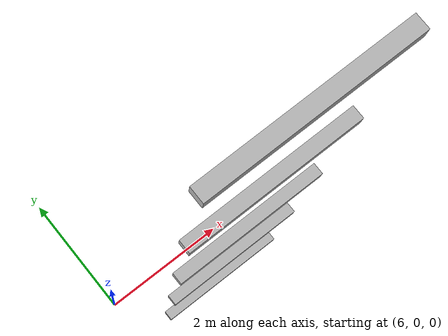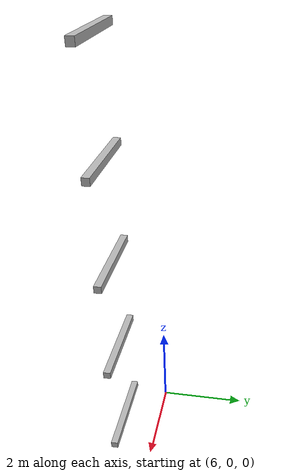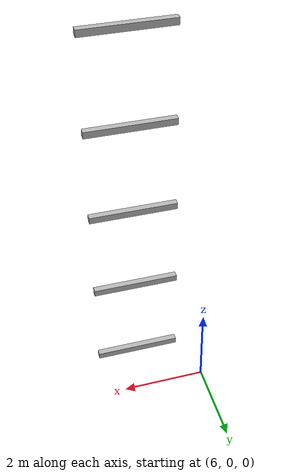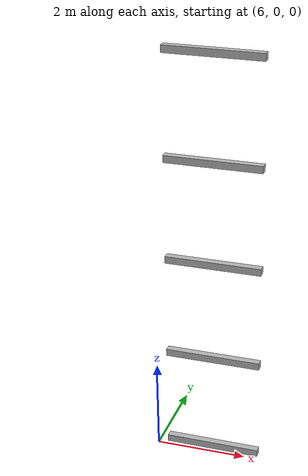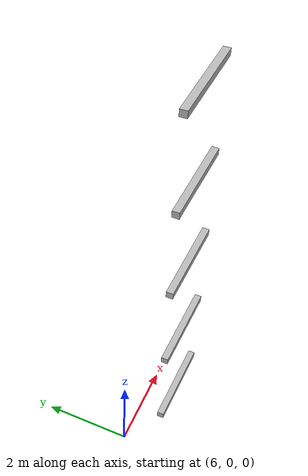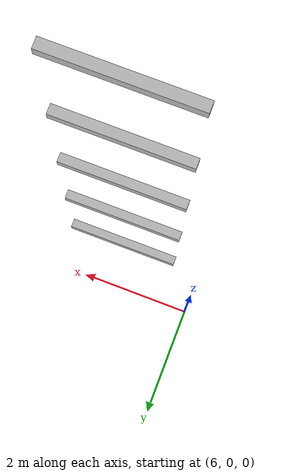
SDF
<sdf version="1.7">
 <world name="default">
  <model name="orthogonal_747_2.000.15_TS">
   <static>1</static>
   <link name="x_link_1_2_6">
    <inertial>
     <mass>1</mass>
     <inertia>
      <ixx>0.166667</ixx>
      <ixy>0</ixy>
      <ixz>0</ixz>
      <iyy>0.166667</iyy>
      <iyz>0</iyz>
      <izz>0.166667</izz>
     </inertia>
    </inertial>
    <pose>13.975 4.3 3.225 0 -0 0</pose>
    <visual name="visual_0">
     <laser_retro>1275</laser_retro>
     <geometry><box><size>2 1e-06 0.15</size></box></geometry>
     <material>
      <script><name>Gazebo/Grey</name><uri>file://media/materials/scripts/gazebo.material</uri></script>
      <shader type="pixel"><normal_map>__default__</normal_map></shader>
      <ambient>0.678 0.498 0.659 1</ambient>
      <diffuse>0.7 0.7 0.7 1</diffuse>
      <specular>0.01 0.01 0.01 1</specular>
      <emissive>0 0 0 1</emissive>
     </material>
     <pose>0 -0.075 0 0 -0 0</pose>
     <transparency>1</transparency>
    </visual>
    <visual name="visual_1">
     <laser_retro>1276</laser_retro>
     <geometry><box><size>2 1e-06 0.15</size></box></geometry>
     <material>
      <script><name>Gazebo/Grey</name><uri>file://media/materials/scripts/gazebo.material</uri></script>
      <shader type="pixel"><normal_map>__default__</normal_map></shader>
      <ambient>0.447 0.624 0.812 1</ambient>
      <diffuse>0.7 0.7 0.7 1</diffuse>
      <specular>0.01 0.01 0.01 1</specular>
      <emissive>0 0 0 1</emissive>
     </material>
     <pose>0 0.075 0 0 -0 0</pose>
     <transparency>1</transparency>
    </visual>
    <visual name="visual_2">
     <laser_retro>1277</laser_retro>
     <geometry><box><size>2 0.15 1e-06</size></box></geometry>
     <material>
      <script><name>Gazebo/Grey</name><uri>file://media/materials/scripts/gazebo.material</uri></script>
      <shader type="pixel"><normal_map>__default__</normal_map></shader>
      <ambient>0.988 0.686 0.243 1</ambient>
      <diffuse>0.7 0.7 0.7 1</diffuse>
      <specular>0.01 0.01 0.01 1</specular>
      <emissive>0 0 0 1</emissive>
     </material>
     <pose>0 0 -0.075 0 -0 0</pose>
     <transparency>1</transparency>
    </visual>
    <visual name="visual_3">
     <laser_retro>1278</laser_retro>
     <geometry><box><size>1e-06 0.15 0.15</size></box></geometry>
     <material>
      <script><name>Gazebo/Grey</name><uri>file://media/materials/scripts/gazebo.material</uri></script>
      <shader type="pixel"><normal_map>__default__</normal_map></shader>
      <ambient>0.988 0.914 0.31 1</ambient>
      <diffuse>0.7 0.7 0.7 1</diffuse>
      <specular>0.01 0.01 0.01 1</specular>
      <emissive>0 0 0 1</emissive>
     </material>
     <pose>1 0 0 0 -0 0</pose>
     <transparency>1</transparency>
    </visual>
    <visual name="visual_4">
     <laser_retro>1279</laser_retro>
     <geometry><box><size>2 0.15 1e-06</size></box></geometry>
     <material>
      <script><name>Gazebo/Grey</name><uri>file://media/materials/scripts/gazebo.material</uri></script>
      <shader type="pixel"><normal_map>__default__</normal_map></shader>
      <ambient>0.937 0.161 0.161 1</ambient>
      <diffuse>0.7 0.7 0.7 1</diffuse>
      <specular>0.01 0.01 0.01 1</specular>
      <emissive>0 0 0 1</emissive>
     </material>
     <pose>0 0 0.075 0 -0 0</pose>
     <transparency>1</transparency>
    </visual>
    <visual name="visual_5">
     <laser_retro>1280</laser_retro>
     <geometry><box><size>1e-06 0.15 0.15</size></box></geometry>
     <material>
      <script><name>Gazebo/Grey</name><uri>file://media/materials/scripts/gazebo.material</uri></script>
      <shader type="pixel"><normal_map>__default__</normal_map></shader>
      <ambient>0.541 0.886 0.204 1</ambient>
      <diffuse>0.7 0.7 0.7 1</diffuse>
      <specular>0.01 0.01 0.01 1</specular>
      <emissive>0 0 0 1</emissive>
     </material>
     <pose>-1 0 0 0 -0 0</pose>
     <transparency>1</transparency>
    </visual>
    <visual name="visual_texture">
     <geometry><box><size>1.9998 0.149985 0.149985</size></box></geometry>
     <material>
      <script>
       <uri>model://BASE_MODELS/simple_block_v2_textured/materials/scripts</uri>
       <uri>model://BASE_MODELS/simple_block_v2_textured/materials/textures</uri>
       <name>metal</name>
      </script>
     </material>
     <laser_retro>1281</laser_retro>
    </visual>
    <collision name="collision">
     <geometry><box><size>2 0.15 0.15</size></box></geometry>
     <surface>
      <friction>
       <ode><mu>1</mu><mu2>1</mu2><fdir1>0 0 0</fdir1><slip1>0</slip1><slip2>0</slip2></ode>
       <torsional>
        <coefficient>1</coefficient>
        <patch_radius>0</patch_radius>
        <surface_radius>0</surface_radius>
        <use_patch_radius>1</use_patch_radius>
        <ode><slip>0</slip></ode>
       </torsional>
      </friction>
      <bounce><restitution_coefficient>0</restitution_coefficient><threshold>1e+06</threshold></bounce>
      <contact>
       <collide_without_contact>0</collide_without_contact>
       <collide_without_contact_bitmask>1</collide_without_contact_bitmask>
       <collide_bitmask>1</collide_bitmask>
       <ode>
        <soft_cfm>0</soft_cfm>
        <soft_erp>0.2</soft_erp>
        <kp>1e+13</kp>
        <kd>1</kd>
        <max_vel>0.01</max_vel>
        <min_depth>0</min_depth>
       </ode>
       <bullet>
        <split_impulse>1</split_impulse>
        <split_impulse_penetration_threshold>-0.01</split_impulse_penetration_threshold>
        <soft_cfm>0</soft_cfm>
        <soft_erp>0.2</soft_erp>
        <kp>1e+13</kp>
        <kd>1</kd>
       </bullet>
      </contact>
     </surface>
    </collision>
   </link>
   <link name="x_link_2_2_6">
    <inertial>
     <mass>1</mass>
     <inertia>
      <ixx>0.166667</ixx>
      <ixy>0</ixy>
      <ixz>0</ixz>
      <iyy>0.166667</iyy>
      <iyz>0</iyz>
      <izz>0.166667</izz>
     </inertia>
    </inertial>
    <pose>13.975 4.3 5.375 0 -0 0</pose>
    <visual name="visual_0">
     <laser_retro>2178</laser_retro>
     <geometry><box><size>2 1e-06 0.15</size></box></geometry>
     <material>
      <script><name>Gazebo/Grey</name><uri>file://media/materials/scripts/gazebo.material</uri></script>
      <shader type="pixel"><normal_map>__default__</normal_map></shader>
      <ambient>0.678 0.498 0.659 1</ambient>
      <diffuse>0.7 0.7 0.7 1</diffuse>
      <specular>0.01 0.01 0.01 1</specular>
      <emissive>0 0 0 1</emissive>
     </material>
     <pose>0 -0.075 0 0 -0 0</pose>
     <transparency>1</transparency>
    </visual>
    <visual name="visual_1">
     <laser_retro>2179</laser_retro>
     <geometry><box><size>2 1e-06 0.15</size></box></geometry>
     <material>
      <script><name>Gazebo/Grey</name><uri>file://media/materials/scripts/gazebo.material</uri></script>
      <shader type="pixel"><normal_map>__default__</normal_map></shader>
      <ambient>0.447 0.624 0.812 1</ambient>
      <diffuse>0.7 0.7 0.7 1</diffuse>
      <specular>0.01 0.01 0.01 1</specular>
      <emissive>0 0 0 1</emissive>
     </material>
     <pose>0 0.075 0 0 -0 0</pose>
     <transparency>1</transparency>
    </visual>
    <visual name="visual_2">
     <laser_retro>2180</laser_retro>
     <geometry><box><size>2 0.15 1e-06</size></box></geometry>
     <material>
      <script><name>Gazebo/Grey</name><uri>file://media/materials/scripts/gazebo.material</uri></script>
      <shader type="pixel"><normal_map>__default__</normal_map></shader>
      <ambient>0.988 0.686 0.243 1</ambient>
      <diffuse>0.7 0.7 0.7 1</diffuse>
      <specular>0.01 0.01 0.01 1</specular>
      <emissive>0 0 0 1</emissive>
     </material>
     <pose>0 0 -0.075 0 -0 0</pose>
     <transparency>1</transparency>
    </visual>
    <visual name="visual_3">
     <laser_retro>2181</laser_retro>
     <geometry><box><size>1e-06 0.15 0.15</size></box></geometry>
     <material>
      <script><name>Gazebo/Grey</name><uri>file://media/materials/scripts/gazebo.material</uri></script>
      <shader type="pixel"><normal_map>__default__</normal_map></shader>
      <ambient>0.988 0.914 0.31 1</ambient>
      <diffuse>0.7 0.7 0.7 1</diffuse>
      <specular>0.01 0.01 0.01 1</specular>
      <emissive>0 0 0 1</emissive>
     </material>
     <pose>1 0 0 0 -0 0</pose>
     <transparency>1</transparency>
    </visual>
    <visual name="visual_4">
     <laser_retro>2182</laser_retro>
     <geometry><box><size>2 0.15 1e-06</size></box></geometry>
     <material>
      <script><name>Gazebo/Grey</name><uri>file://media/materials/scripts/gazebo.material</uri></script>
      <shader type="pixel"><normal_map>__default__</normal_map></shader>
      <ambient>0.937 0.161 0.161 1</ambient>
      <diffuse>0.7 0.7 0.7 1</diffuse>
      <specular>0.01 0.01 0.01 1</specular>
      <emissive>0 0 0 1</emissive>
     </material>
     <pose>0 0 0.075 0 -0 0</pose>
     <transparency>1</transparency>
    </visual>
    <visual name="visual_5">
     <laser_retro>2183</laser_retro>
     <geometry><box><size>1e-06 0.15 0.15</size></box></geometry>
     <material>
      <script><name>Gazebo/Grey</name><uri>file://media/materials/scripts/gazebo.material</uri></script>
      <shader type="pixel"><normal_map>__default__</normal_map></shader>
      <ambient>0.541 0.886 0.204 1</ambient>
      <diffuse>0.7 0.7 0.7 1</diffuse>
      <specular>0.01 0.01 0.01 1</specular>
      <emissive>0 0 0 1</emissive>
     </material>
     <pose>-1 0 0 0 -0 0</pose>
     <transparency>1</transparency>
    </visual>
    <visual name="visual_texture">
     <geometry><box><size>1.9998 0.149985 0.149985</size></box></geometry>
     <material>
      <script>
       <uri>model://BASE_MODELS/simple_block_v2_textured/materials/scripts</uri>
       <uri>model://BASE_MODELS/simple_block_v2_textured/materials/textures</uri>
       <name>metal</name>
      </script>
     </material>
     <laser_retro>2184</laser_retro>
    </visual>
    <collision name="collision">
     <geometry><box><size>2 0.15 0.15</size></box></geometry>
     <surface>
      <friction>
       <ode><mu>1</mu><mu2>1</mu2><fdir1>0 0 0</fdir1><slip1>0</slip1><slip2>0</slip2></ode>
       <torsional>
        <coefficient>1</coefficient>
        <patch_radius>0</patch_radius>
        <surface_radius>0</surface_radius>
        <use_patch_radius>1</use_patch_radius>
        <ode><slip>0</slip></ode>
       </torsional>
      </friction>
      <bounce><restitution_coefficient>0</restitution_coefficient><threshold>1e+06</threshold></bounce>
      <contact>
       <collide_without_contact>0</collide_without_contact>
       <collide_without_contact_bitmask>1</collide_without_contact_bitmask>
       <collide_bitmask>1</collide_bitmask>
       <ode>
        <soft_cfm>0</soft_cfm>
        <soft_erp>0.2</soft_erp>
        <kp>1e+13</kp>
        <kd>1</kd>
        <max_vel>0.01</max_vel>
        <min_depth>0</min_depth>
       </ode>
       <bullet>
        <split_impulse>1</split_impulse>
        <split_impulse_penetration_threshold>-0.01</split_impulse_penetration_threshold>
        <soft_cfm>0</soft_cfm>
        <soft_erp>0.2</soft_erp>
        <kp>1e+13</kp>
        <kd>1</kd>
       </bullet>
      </contact>
     </surface>
    </collision>
   </link>
   <link name="x_link_3_2_6">
    <inertial>
     <mass>1</mass>
     <inertia>
      <ixx>0.166667</ixx>
      <ixy>0</ixy>
      <ixz>0</ixz>
      <iyy>0.166667</iyy>
      <iyz>0</iyz>
      <izz>0.166667</izz>
     </inertia>
    </inertial>
    <pose>13.975 4.3 7.525 0 -0 0</pose>
    <visual name="visual_0">
     <laser_retro>3081</laser_retro>
     <geometry><box><size>2 1e-06 0.15</size></box></geometry>
     <material>
      <script><name>Gazebo/Grey</name><uri>file://media/materials/scripts/gazebo.material</uri></script>
      <shader type="pixel"><normal_map>__default__</normal_map></shader>
      <ambient>0.678 0.498 0.659 1</ambient>
      <diffuse>0.7 0.7 0.7 1</diffuse>
      <specular>0.01 0.01 0.01 1</specular>
      <emissive>0 0 0 1</emissive>
     </material>
     <pose>0 -0.075 0 0 -0 0</pose>
     <transparency>1</transparency>
    </visual>
    <visual name="visual_1">
     <laser_retro>3082</laser_retro>
     <geometry><box><size>2 1e-06 0.15</size></box></geometry>
     <material>
      <script><name>Gazebo/Grey</name><uri>file://media/materials/scripts/gazebo.material</uri></script>
      <shader type="pixel"><normal_map>__default__</normal_map></shader>
      <ambient>0.447 0.624 0.812 1</ambient>
      <diffuse>0.7 0.7 0.7 1</diffuse>
      <specular>0.01 0.01 0.01 1</specular>
      <emissive>0 0 0 1</emissive>
     </material>
     <pose>0 0.075 0 0 -0 0</pose>
     <transparency>1</transparency>
    </visual>
    <visual name="visual_2">
     <laser_retro>3083</laser_retro>
     <geometry><box><size>2 0.15 1e-06</size></box></geometry>
     <material>
      <script><name>Gazebo/Grey</name><uri>file://media/materials/scripts/gazebo.material</uri></script>
      <shader type="pixel"><normal_map>__default__</normal_map></shader>
      <ambient>0.988 0.686 0.243 1</ambient>
      <diffuse>0.7 0.7 0.7 1</diffuse>
      <specular>0.01 0.01 0.01 1</specular>
      <emissive>0 0 0 1</emissive>
     </material>
     <pose>0 0 -0.075 0 -0 0</pose>
     <transparency>1</transparency>
    </visual>
    <visual name="visual_3">
     <laser_retro>3084</laser_retro>
     <geometry><box><size>1e-06 0.15 0.15</size></box></geometry>
     <material>
      <script><name>Gazebo/Grey</name><uri>file://media/materials/scripts/gazebo.material</uri></script>
      <shader type="pixel"><normal_map>__default__</normal_map></shader>
      <ambient>0.988 0.914 0.31 1</ambient>
      <diffuse>0.7 0.7 0.7 1</diffuse>
      <specular>0.01 0.01 0.01 1</specular>
      <emissive>0 0 0 1</emissive>
     </material>
     <pose>1 0 0 0 -0 0</pose>
     <transparency>1</transparency>
    </visual>
    <visual name="visual_4">
     <laser_retro>3085</laser_retro>
     <geometry><box><size>2 0.15 1e-06</size></box></geometry>
     <material>
      <script><name>Gazebo/Grey</name><uri>file://media/materials/scripts/gazebo.material</uri></script>
      <shader type="pixel"><normal_map>__default__</normal_map></shader>
      <ambient>0.937 0.161 0.161 1</ambient>
      <diffuse>0.7 0.7 0.7 1</diffuse>
      <specular>0.01 0.01 0.01 1</specular>
      <emissive>0 0 0 1</emissive>
     </material>
     <pose>0 0 0.075 0 -0 0</pose>
     <transparency>1</transparency>
    </visual>
    <visual name="visual_5">
     <laser_retro>3086</laser_retro>
     <geometry><box><size>1e-06 0.15 0.15</size></box></geometry>
     <material>
      <script><name>Gazebo/Grey</name><uri>file://media/materials/scripts/gazebo.material</uri></script>
      <shader type="pixel"><normal_map>__default__</normal_map></shader>
      <ambient>0.541 0.886 0.204 1</ambient>
      <diffuse>0.7 0.7 0.7 1</diffuse>
      <specular>0.01 0.01 0.01 1</specular>
      <emissive>0 0 0 1</emissive>
     </material>
     <pose>-1 0 0 0 -0 0</pose>
     <transparency>1</transparency>
    </visual>
    <visual name="visual_texture">
     <geometry><box><size>1.9998 0.149985 0.149985</size></box></geometry>
     <material>
      <script>
       <uri>model://BASE_MODELS/simple_block_v2_textured/materials/scripts</uri>
       <uri>model://BASE_MODELS/simple_block_v2_textured/materials/textures</uri>
       <name>metal</name>
      </script>
     </material>
     <laser_retro>3087</laser_retro>
    </visual>
    <collision name="collision">
     <geometry><box><size>2 0.15 0.15</size></box></geometry>
     <surface>
      <friction>
       <ode><mu>1</mu><mu2>1</mu2><fdir1>0 0 0</fdir1><slip1>0</slip1><slip2>0</slip2></ode>
       <torsional>
        <coefficient>1</coefficient>
        <patch_radius>0</patch_radius>
        <surface_radius>0</surface_radius>
        <use_patch_radius>1</use_patch_radius>
        <ode><slip>0</slip></ode>
       </torsional>
      </friction>
      <bounce><restitution_coefficient>0</restitution_coefficient><threshold>1e+06</threshold></bounce>
      <contact>
       <collide_without_contact>0</collide_without_contact>
       <collide_without_contact_bitmask>1</collide_without_contact_bitmask>
       <collide_bitmask>1</collide_bitmask>
       <ode>
        <soft_cfm>0</soft_cfm>
        <soft_erp>0.2</soft_erp>
        <kp>1e+13</kp>
        <kd>1</kd>
        <max_vel>0.01</max_vel>
        <min_depth>0</min_depth>
       </ode>
       <bullet>
        <split_impulse>1</split_impulse>
        <split_impulse_penetration_threshold>-0.01</split_impulse_penetration_threshold>
        <soft_cfm>0</soft_cfm>
        <soft_erp>0.2</soft_erp>
        <kp>1e+13</kp>
        <kd>1</kd>
       </bullet>
      </contact>
     </surface>
    </collision>
   </link>
   <link name="x_link_4_2_6">
    <inertial>
     <mass>1</mass>
     <inertia>
      <ixx>0.166667</ixx>
      <ixy>0</ixy>
      <ixz>0</ixz>
      <iyy>0.166667</iyy>
      <iyz>0</iyz>
      <izz>0.166667</izz>
     </inertia>
    </inertial>
    <pose>13.975 4.3 9.675 0 -0 0</pose>
    <visual name="visual_0">
     <laser_retro>3984</laser_retro>
     <geometry><box><size>2 1e-06 0.15</size></box></geometry>
     <material>
      <script><name>Gazebo/Grey</name><uri>file://media/materials/scripts/gazebo.material</uri></script>
      <shader type="pixel"><normal_map>__default__</normal_map></shader>
      <ambient>0.678 0.498 0.659 1</ambient>
      <diffuse>0.7 0.7 0.7 1</diffuse>
      <specular>0.01 0.01 0.01 1</specular>
      <emissive>0 0 0 1</emissive>
     </material>
     <pose>0 -0.075 0 0 -0 0</pose>
     <transparency>1</transparency>
    </visual>
    <visual name="visual_1">
     <laser_retro>3985</laser_retro>
     <geometry><box><size>2 1e-06 0.15</size></box></geometry>
     <material>
      <script><name>Gazebo/Grey</name><uri>file://media/materials/scripts/gazebo.material</uri></script>
      <shader type="pixel"><normal_map>__default__</normal_map></shader>
      <ambient>0.447 0.624 0.812 1</ambient>
      <diffuse>0.7 0.7 0.7 1</diffuse>
      <specular>0.01 0.01 0.01 1</specular>
      <emissive>0 0 0 1</emissive>
     </material>
     <pose>0 0.075 0 0 -0 0</pose>
     <transparency>1</transparency>
    </visual>
    <visual name="visual_2">
     <laser_retro>3986</laser_retro>
     <geometry><box><size>2 0.15 1e-06</size></box></geometry>
     <material>
      <script><name>Gazebo/Grey</name><uri>file://media/materials/scripts/gazebo.material</uri></script>
      <shader type="pixel"><normal_map>__default__</normal_map></shader>
      <ambient>0.988 0.686 0.243 1</ambient>
      <diffuse>0.7 0.7 0.7 1</diffuse>
      <specular>0.01 0.01 0.01 1</specular>
      <emissive>0 0 0 1</emissive>
     </material>
     <pose>0 0 -0.075 0 -0 0</pose>
     <transparency>1</transparency>
    </visual>
    <visual name="visual_3">
     <laser_retro>3987</laser_retro>
     <geometry><box><size>1e-06 0.15 0.15</size></box></geometry>
     <material>
      <script><name>Gazebo/Grey</name><uri>file://media/materials/scripts/gazebo.material</uri></script>
      <shader type="pixel"><normal_map>__default__</normal_map></shader>
      <ambient>0.988 0.914 0.31 1</ambient>
      <diffuse>0.7 0.7 0.7 1</diffuse>
      <specular>0.01 0.01 0.01 1</specular>
      <emissive>0 0 0 1</emissive>
     </material>
     <pose>1 0 0 0 -0 0</pose>
     <transparency>1</transparency>
    </visual>
    <visual name="visual_4">
     <laser_retro>3988</laser_retro>
     <geometry><box><size>2 0.15 1e-06</size></box></geometry>
     <material>
      <script><name>Gazebo/Grey</name><uri>file://media/materials/scripts/gazebo.material</uri></script>
      <shader type="pixel"><normal_map>__default__</normal_map></shader>
      <ambient>0.937 0.161 0.161 1</ambient>
      <diffuse>0.7 0.7 0.7 1</diffuse>
      <specular>0.01 0.01 0.01 1</specular>
      <emissive>0 0 0 1</emissive>
     </material>
     <pose>0 0 0.075 0 -0 0</pose>
     <transparency>1</transparency>
    </visual>
    <visual name="visual_5">
     <laser_retro>3989</laser_retro>
     <geometry><box><size>1e-06 0.15 0.15</size></box></geometry>
     <material>
      <script><name>Gazebo/Grey</name><uri>file://media/materials/scripts/gazebo.material</uri></script>
      <shader type="pixel"><normal_map>__default__</normal_map></shader>
      <ambient>0.541 0.886 0.204 1</ambient>
      <diffuse>0.7 0.7 0.7 1</diffuse>
      <specular>0.01 0.01 0.01 1</specular>
      <emissive>0 0 0 1</emissive>
     </material>
     <pose>-1 0 0 0 -0 0</pose>
     <transparency>1</transparency>
    </visual>
    <visual name="visual_texture">
     <geometry><box><size>1.9998 0.149985 0.149985</size></box></geometry>
     <material>
      <script>
       <uri>model://BASE_MODELS/simple_block_v2_textured/materials/scripts</uri>
       <uri>model://BASE_MODELS/simple_block_v2_textured/materials/textures</uri>
       <name>metal</name>
      </script>
     </material>
     <laser_retro>3990</laser_retro>
    </visual>
    <collision name="collision">
     <geometry><box><size>2 0.15 0.15</size></box></geometry>
     <surface>
      <friction>
       <ode><mu>1</mu><mu2>1</mu2><fdir1>0 0 0</fdir1><slip1>0</slip1><slip2>0</slip2></ode>
       <torsional>
        <coefficient>1</coefficient>
        <patch_radius>0</patch_radius>
        <surface_radius>0</surface_radius>
        <use_patch_radius>1</use_patch_radius>
        <ode><slip>0</slip></ode>
       </torsional>
      </friction>
      <bounce><restitution_coefficient>0</restitution_coefficient><threshold>1e+06</threshold></bounce>
      <contact>
       <collide_without_contact>0</collide_without_contact>
       <collide_without_contact_bitmask>1</collide_without_contact_bitmask>
       <collide_bitmask>1</collide_bitmask>
       <ode>
        <soft_cfm>0</soft_cfm>
        <soft_erp>0.2</soft_erp>
        <kp>1e+13</kp>
        <kd>1</kd>
        <max_vel>0.01</max_vel>
        <min_depth>0</min_depth>
       </ode>
       <bullet>
        <split_impulse>1</split_impulse>
        <split_impulse_penetration_threshold>-0.01</split_impulse_penetration_threshold>
        <soft_cfm>0</soft_cfm>
        <soft_erp>0.2</soft_erp>
        <kp>1e+13</kp>
        <kd>1</kd>
       </bullet>
      </contact>
     </surface>
    </collision>
   </link>
   <link name="x_link_5_2_6">
    <inertial>
     <mass>1</mass>
     <inertia>
      <ixx>0.166667</ixx>
      <ixy>0</ixy>
      <ixz>0</ixz>
      <iyy>0.166667</iyy>
      <iyz>0</iyz>
      <izz>0.166667</izz>
     </inertia>
    </inertial>
    <pose>13.975 4.3 11.825 0 -0 0</pose>
    <visual name="visual_0">
     <laser_retro>4887</laser_retro>
     <geometry><box><size>2 1e-06 0.15</size></box></geometry>
     <material>
      <script><name>Gazebo/Grey</name><uri>file://media/materials/scripts/gazebo.material</uri></script>
      <shader type="pixel"><normal_map>__default__</normal_map></shader>
      <ambient>0.678 0.498 0.659 1</ambient>
      <diffuse>0.7 0.7 0.7 1</diffuse>
      <specular>0.01 0.01 0.01 1</specular>
      <emissive>0 0 0 1</emissive>
     </material>
     <pose>0 -0.075 0 0 -0 0</pose>
     <transparency>1</transparency>
    </visual>
    <visual name="visual_1">
     <laser_retro>4888</laser_retro>
     <geometry><box><size>2 1e-06 0.15</size></box></geometry>
     <material>
      <script><name>Gazebo/Grey</name><uri>file://media/materials/scripts/gazebo.material</uri></script>
      <shader type="pixel"><normal_map>__default__</normal_map></shader>
      <ambient>0.447 0.624 0.812 1</ambient>
      <diffuse>0.7 0.7 0.7 1</diffuse>
      <specular>0.01 0.01 0.01 1</specular>
      <emissive>0 0 0 1</emissive>
     </material>
     <pose>0 0.075 0 0 -0 0</pose>
     <transparency>1</transparency>
    </visual>
    <visual name="visual_2">
     <laser_retro>4889</laser_retro>
     <geometry><box><size>2 0.15 1e-06</size></box></geometry>
     <material>
      <script><name>Gazebo/Grey</name><uri>file://media/materials/scripts/gazebo.material</uri></script>
      <shader type="pixel"><normal_map>__default__</normal_map></shader>
      <ambient>0.988 0.686 0.243 1</ambient>
      <diffuse>0.7 0.7 0.7 1</diffuse>
      <specular>0.01 0.01 0.01 1</specular>
      <emissive>0 0 0 1</emissive>
     </material>
     <pose>0 0 -0.075 0 -0 0</pose>
     <transparency>1</transparency>
    </visual>
    <visual name="visual_3">
     <laser_retro>4890</laser_retro>
     <geometry><box><size>1e-06 0.15 0.15</size></box></geometry>
     <material>
      <script><name>Gazebo/Grey</name><uri>file://media/materials/scripts/gazebo.material</uri></script>
      <shader type="pixel"><normal_map>__default__</normal_map></shader>
      <ambient>0.988 0.914 0.31 1</ambient>
      <diffuse>0.7 0.7 0.7 1</diffuse>
      <specular>0.01 0.01 0.01 1</specular>
      <emissive>0 0 0 1</emissive>
     </material>
     <pose>1 0 0 0 -0 0</pose>
     <transparency>1</transparency>
    </visual>
    <visual name="visual_4">
     <laser_retro>4891</laser_retro>
     <geometry><box><size>2 0.15 1e-06</size></box></geometry>
     <material>
      <script><name>Gazebo/Grey</name><uri>file://media/materials/scripts/gazebo.material</uri></script>
      <shader type="pixel"><normal_map>__default__</normal_map></shader>
      <ambient>0.937 0.161 0.161 1</ambient>
      <diffuse>0.7 0.7 0.7 1</diffuse>
      <specular>0.01 0.01 0.01 1</specular>
      <emissive>0 0 0 1</emissive>
     </material>
     <pose>0 0 0.075 0 -0 0</pose>
     <transparency>1</transparency>
    </visual>
    <visual name="visual_5">
     <laser_retro>4892</laser_retro>
     <geometry><box><size>1e-06 0.15 0.15</size></box></geometry>
     <material>
      <script><name>Gazebo/Grey</name><uri>file://media/materials/scripts/gazebo.material</uri></script>
      <shader type="pixel"><normal_map>__default__</normal_map></shader>
      <ambient>0.541 0.886 0.204 1</ambient>
      <diffuse>0.7 0.7 0.7 1</diffuse>
      <specular>0.01 0.01 0.01 1</specular>
      <emissive>0 0 0 1</emissive>
     </material>
     <pose>-1 0 0 0 -0 0</pose>
     <transparency>1</transparency>
    </visual>
    <visual name="visual_texture">
     <geometry><box><size>1.9998 0.149985 0.149985</size></box></geometry>
     <material>
      <script>
       <uri>model://BASE_MODELS/simple_block_v2_textured/materials/scripts</uri>
       <uri>model://BASE_MODELS/simple_block_v2_textured/materials/textures</uri>
       <name>metal</name>
      </script>
     </material>
     <laser_retro>4893</laser_retro>
    </visual>
    <collision name="collision">
     <geometry><box><size>2 0.15 0.15</size></box></geometry>
     <surface>
      <friction>
       <ode><mu>1</mu><mu2>1</mu2><fdir1>0 0 0</fdir1><slip1>0</slip1><slip2>0</slip2></ode>
       <torsional>
        <coefficient>1</coefficient>
        <patch_radius>0</patch_radius>
        <surface_radius>0</surface_radius>
        <use_patch_radius>1</use_patch_radius>
        <ode><slip>0</slip></ode>
       </torsional>
      </friction>
      <bounce><restitution_coefficient>0</restitution_coefficient><threshold>1e+06</threshold></bounce>
      <contact>
       <collide_without_contact>0</collide_without_contact>
       <collide_without_contact_bitmask>1</collide_without_contact_bitmask>
       <collide_bitmask>1</collide_bitmask>
       <ode>
        <soft_cfm>0</soft_cfm>
        <soft_erp>0.2</soft_erp>
        <kp>1e+13</kp>
        <kd>1</kd>
        <max_vel>0.01</max_vel>
        <min_depth>0</min_depth>
       </ode>
       <bullet>
        <split_impulse>1</split_impulse>
        <split_impulse_penetration_threshold>-0.01</split_impulse_penetration_threshold>
        <soft_cfm>0</soft_cfm>
        <soft_erp>0.2</soft_erp>
        <kp>1e+13</kp>
        <kd>1</kd>
       </bullet>
      </contact>
     </surface>
    </collision>
   </link>
   <pose>-6.47624 -5 -2.5 0 -0 0</pose>
  </model>
 </world>
</sdf>
